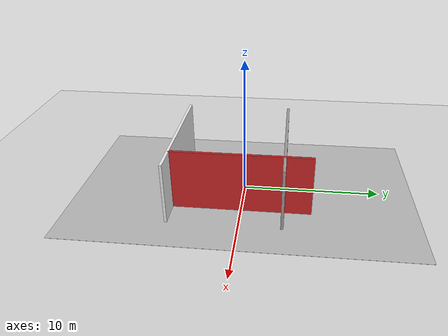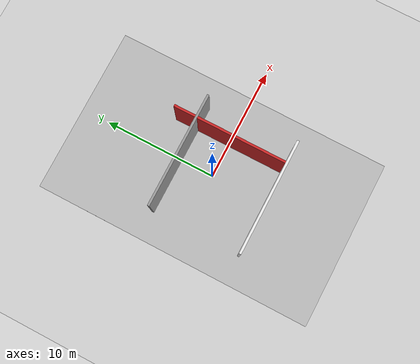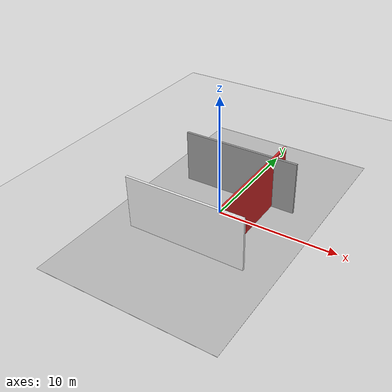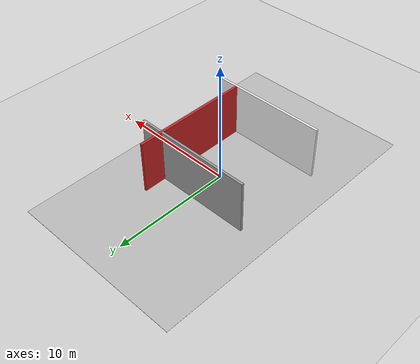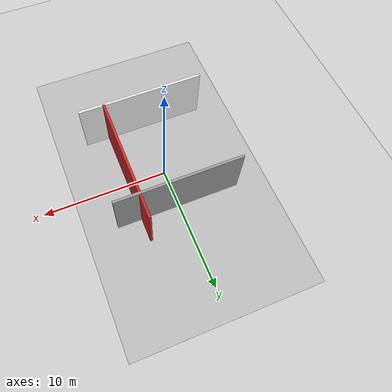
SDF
<?xml version="1.0" ?>
<sdf version="1.6">
  <world name="striped_walls_world">
    <include>
      <uri>model://sun</uri>
    </include>
    <include>
      <uri>model://ground_plane</uri>
    </include>

    <!-- Define Wall Material with Striped Texture -->
    <material name="striped_material">
      <script>
        <uri>file://media/materials/scripts/gazebo.material</uri>
        <name>Gazebo/Stripes</name>
      </script>
    </material>

    <!-- Define Walls -->
    <model name="walls">
      <static>true</static>
      <link name="wall1">
        <visual name="wall1_visual">
          <geometry>
            <box>
              <size>10 0.2 6</size>
            </box>
          </geometry>
          <material>
            <script>
              <uri>file://media/materials/scripts/kortex.material</uri>
              <name>Kortex/Gray</name>
            </script>
            <texture>
              <diffuse>file://$(find kortex_gazebo)/media/materials/textures/rainbow_table.png</diffuse>
              <normal>file://$(find kortex_gazebo)/media/materials/textures/rainbow_table.png</normal>
            </texture>
          </material>
        </visual>
        <pose>0 3 1.5 0 0 0</pose>
      </link>

      <link name="wall2">
        <visual name="wall2_visual">
          <geometry>
            <box>
              <size>10 0.2 6</size>
            </box>
          </geometry>
          <material>
            <script>
              <uri>file://media/materials/scripts/kortex.material</uri>
              <name>Kortex/White</name>
            </script>
            <texture>
              <diffuse>file://$(find kortex_gazebo)/media/materials/textures/color_spiral.png</diffuse>
              <normal>file://$(find kortex_gazebo)/media/materials/textures/color_spiral.png</normal>
            </texture>
          </material>
        </visual>
        <pose>0 -5 1.5 0 0 0</pose>
      </link>

      <link name="wall3">
        <visual name="wall3_visual">
          <geometry>
            <box>
              <size>0.2 10 6</size>
            </box>
          </geometry>
          <material>
            <script>
              <uri>file://media/materials/scripts/kortex.material</uri>
              <name>Kortex/Red</name>
            </script>
            <texture>
              <diffuse>file://$(find kortex_gazebo)/media/materials/textures/coloured_wall.jpg</diffuse>
              <normal>file://$(find kortex_gazebo)/media/materials/textures/coloured_wall.jpg</normal>
            </texture>
          </material>
        </visual>
        <pose>3 0 1.5 0 0 0</pose>
      </link>

    </model>

    <!-- Custom Ground Plane -->
    <model name="custom_ground_plane">
      <static>true</static>
      <link name="ground_link">
        <visual name="ground_visual">
          <geometry>
            <box>
              <size>15 25 0.01</size>
            </box>
          </geometry>
          <material>
            <script>
              <uri>file://media/materials/scripts/kortex.material</uri>
              <name>Kortex/Floor</name>
            </script>
          </material>
        </visual>
        <pose>0 0 0 0 0 0</pose>
      </link>
    </model>
  </world>
</sdf>
